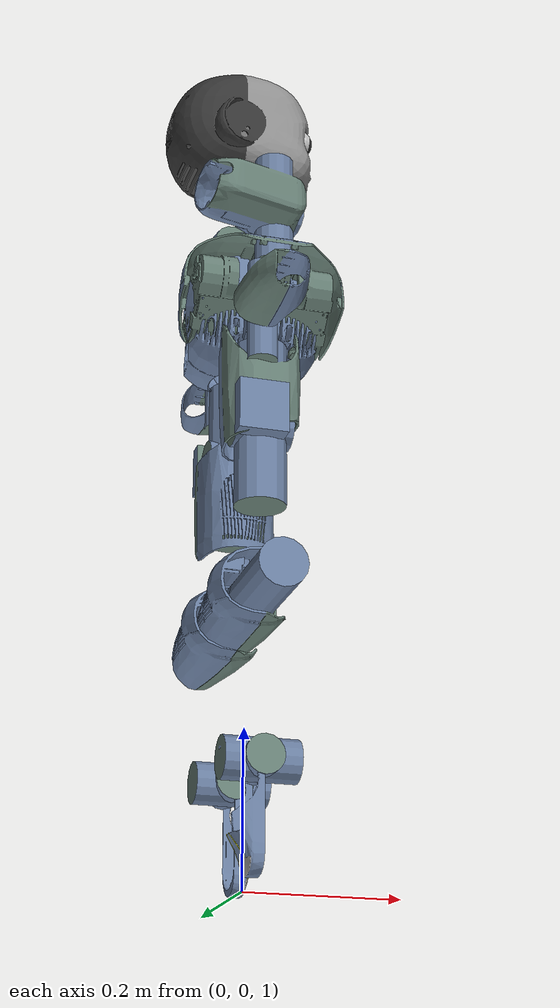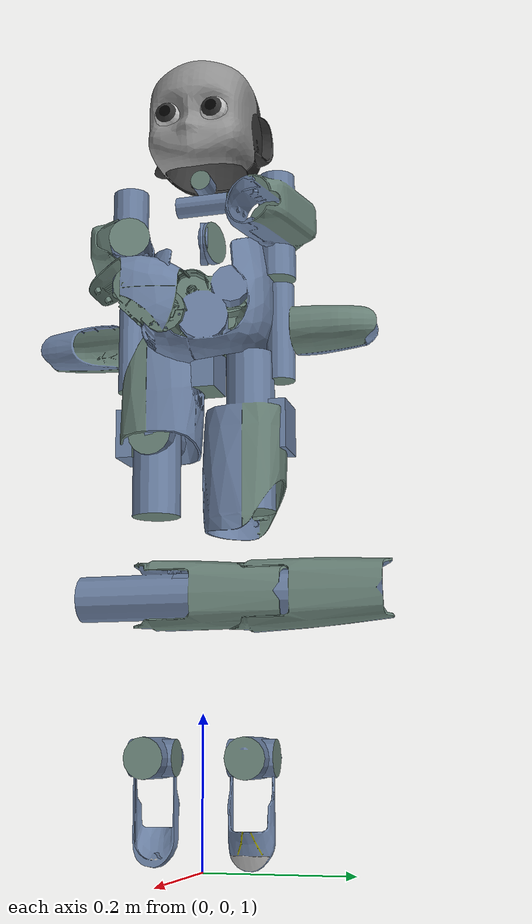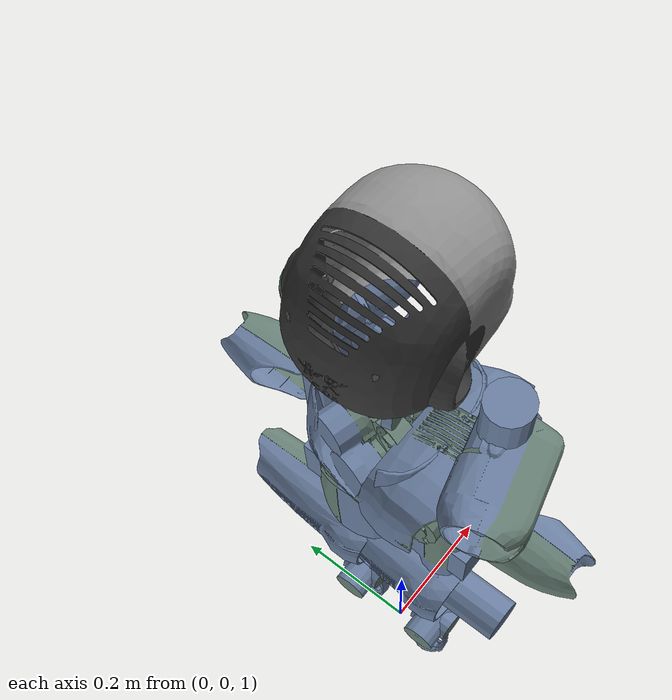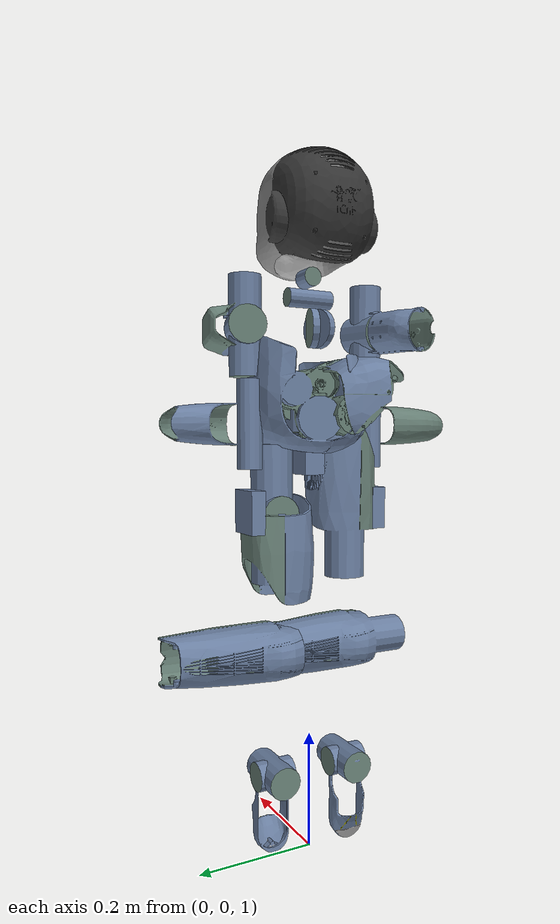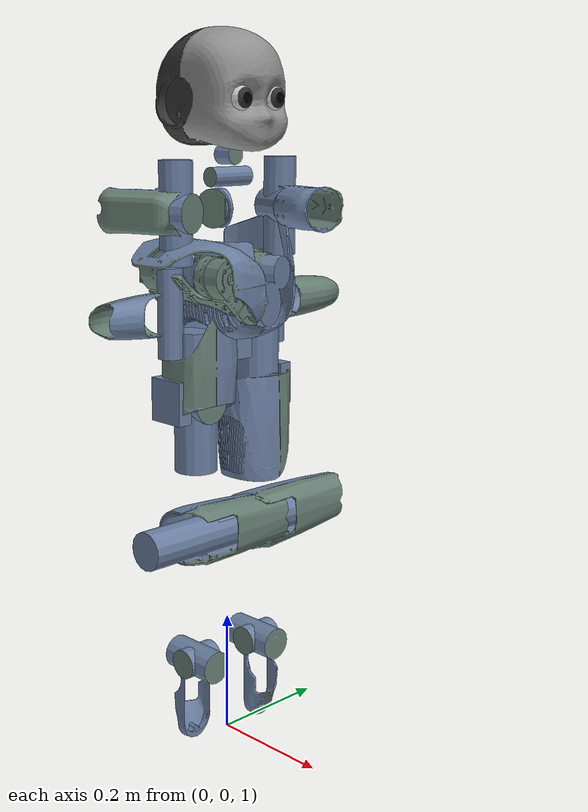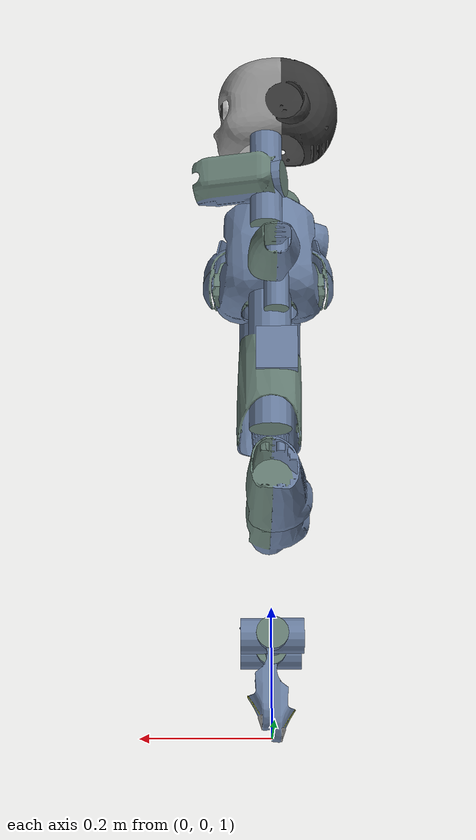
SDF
<?xml version='1.0'?>
<sdf version='1.4'>
  <model name="icub_fixed_self_collide">
    <include>
      <uri>model://icub_self_collide</uri>
      <pose>0.0 0 1.0 0 0 3.14</pose>
    </include>

    <joint name="fixed to ground" type="revolute">
      <parent>world</parent>
      <child>icub_self_collide::root_link</child>
       <axis>
        <limit>
          <lower>0</lower>
          <upper>0</upper>
        </limit>
        <xyz>0 0 1</xyz>
        </axis>
    </joint>

  </model>
</sdf>
